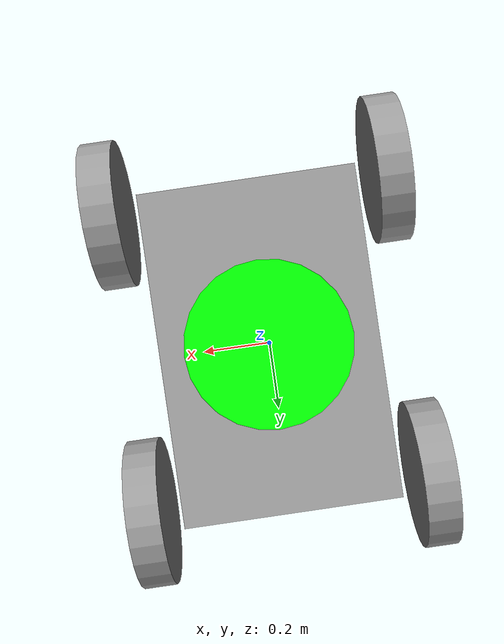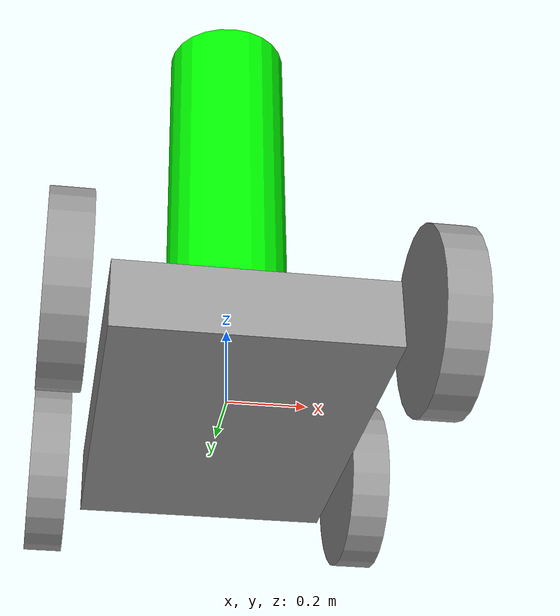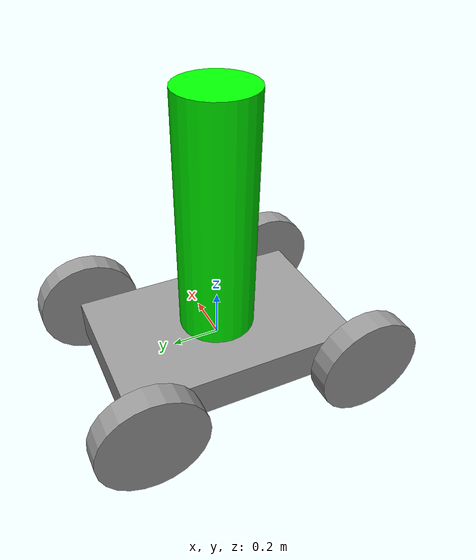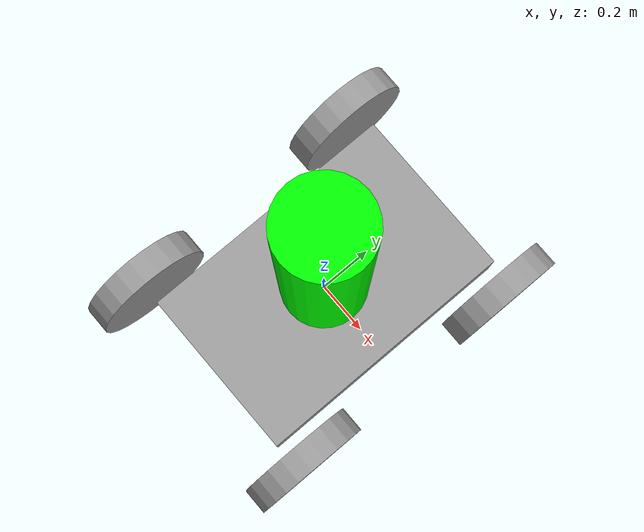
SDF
<?xml version='1.0'?>
<sdf version='1.6'>
  <model name='nemo'>
    <link name='link_1'>
      <inertial>
        <mass>5</mass>
        <inertia>
          <ixx>0.428684</ixx>
          <ixy>0</ixy>
          <ixz>0</ixz>
          <iyy>0.190336</iyy>
          <iyz>0</iyz>
          <izz>0.594986</izz>
        </inertia>
        <pose frame=''>0 0 0 0 -0 0</pose>
      </inertial>
      <pose frame=''>-0 0.00914 -0.007545 0 -0 0</pose>
      <gravity>1</gravity>
      <self_collide>0</self_collide>
      <kinematic>0</kinematic>
      <enable_wind>0</enable_wind>
      <visual name='visual'>
        <pose frame=''>0 0 0 0 -0 0</pose>
        <geometry>
          <box>
            <size>0.654191 1 0.169826</size>
          </box>
        </geometry>
        <material>
          <lighting>1</lighting>
          <script>
            <uri>file://media/materials/scripts/gazebo.material</uri>
            <name>Gazebo/Grey</name>
          </script>
          <shader type='vertex'>
            <normal_map>__default__</normal_map>
          </shader>
          <ambient>0.3 0.3 0.3 1</ambient>
          <diffuse>0.7 0.7 0.7 1</diffuse>
          <specular>0.01 0.01 0.01 1</specular>
          <emissive>0 0 0 1</emissive>
        </material>
        <transparency>0</transparency>
        <cast_shadows>1</cast_shadows>
      </visual>
      <collision name='collision'>
        <laser_retro>0</laser_retro>
        <max_contacts>10</max_contacts>
        <pose frame=''>0 0 0 0 -0 0</pose>
        <geometry>
          <box>
            <size>0.654191 1 0.169826</size>
          </box>
        </geometry>
        <surface>
          <friction>
            <ode>
              <mu>1</mu>
              <mu2>1</mu2>
              <fdir1>0 0 0</fdir1>
              <slip1>0</slip1>
              <slip2>0</slip2>
            </ode>
            <torsional>
              <coefficient>1</coefficient>
              <patch_radius>0</patch_radius>
              <surface_radius>0</surface_radius>
              <use_patch_radius>1</use_patch_radius>
              <ode>
                <slip>0</slip>
              </ode>
            </torsional>
          </friction>
          <bounce>
            <restitution_coefficient>0</restitution_coefficient>
            <threshold>1e+06</threshold>
          </bounce>
          <contact>
            <collide_without_contact>0</collide_without_contact>
            <collide_without_contact_bitmask>1</collide_without_contact_bitmask>
            <collide_bitmask>1</collide_bitmask>
            <ode>
              <soft_cfm>0</soft_cfm>
              <soft_erp>0.2</soft_erp>
              <kp>1e+13</kp>
              <kd>1</kd>
              <max_vel>0.01</max_vel>
              <min_depth>0</min_depth>
            </ode>
            <bullet>
              <split_impulse>1</split_impulse>
              <split_impulse_penetration_threshold>-0.01</split_impulse_penetration_threshold>
              <soft_cfm>0</soft_cfm>
              <soft_erp>0.2</soft_erp>
              <kp>1e+13</kp>
              <kd>1</kd>
            </bullet>
          </contact>
        </surface>
      </collision>
    </link>
    <link name='link_0'>
      <inertial>
        <mass>0.0998699</mass>
        <inertia>
          <ixx>0.00894577</ixx>
          <ixy>0</ixy>
          <ixz>0</ixz>
          <iyy>0.00894577</iyy>
          <iyz>0</iyz>
          <izz>0.00124656</izz>
        </inertia>
        <pose frame=''>0 0 0 0 -0 0</pose>
      </inertial>
      <pose frame=''>-0 -0 0.577368 0 1e-06 -1e-05</pose>
      <gravity>1</gravity>
      <self_collide>0</self_collide>
      <kinematic>0</kinematic>
      <enable_wind>0</enable_wind>
      <visual name='visual'>
        <pose frame=''>0 0 0 0 -0 0</pose>
        <geometry>
          <cylinder>
            <radius>0.157999</radius>
            <length>1</length>
          </cylinder>
        </geometry>
        <material>
          <lighting>1</lighting>
          <script>
            <uri>file://media/materials/scripts/gazebo.material</uri>
            <name>Gazebo/Grey</name>
          </script>
          <shader type='vertex'>
            <normal_map>__default__</normal_map>
          </shader>
          <ambient>0 1 0 1</ambient>
          <diffuse>0.7 0.7 0.7 1</diffuse>
          <specular>0.01 0.01 0.01 1</specular>
          <emissive>0 0 0 1</emissive>
        </material>
        <transparency>0</transparency>
        <cast_shadows>1</cast_shadows>
      </visual>
      <collision name='collision'>
        <laser_retro>0</laser_retro>
        <max_contacts>10</max_contacts>
        <pose frame=''>0 0 0 0 -0 0</pose>
        <geometry>
          <cylinder>
            <radius>0.157999</radius>
            <length>1</length>
          </cylinder>
        </geometry>
        <surface>
          <friction>
            <ode>
              <mu>1</mu>
              <mu2>1</mu2>
              <fdir1>0 0 0</fdir1>
              <slip1>0</slip1>
              <slip2>0</slip2>
            </ode>
            <torsional>
              <coefficient>1</coefficient>
              <patch_radius>0</patch_radius>
              <surface_radius>0</surface_radius>
              <use_patch_radius>1</use_patch_radius>
              <ode>
                <slip>0</slip>
              </ode>
            </torsional>
          </friction>
          <bounce>
            <restitution_coefficient>0</restitution_coefficient>
            <threshold>1e+06</threshold>
          </bounce>
          <contact>
            <collide_without_contact>0</collide_without_contact>
            <collide_without_contact_bitmask>1</collide_without_contact_bitmask>
            <collide_bitmask>1</collide_bitmask>
            <ode>
              <soft_cfm>0</soft_cfm>
              <soft_erp>0.2</soft_erp>
              <kp>1e+13</kp>
              <kd>1</kd>
              <max_vel>0.01</max_vel>
              <min_depth>0</min_depth>
            </ode>
            <bullet>
              <split_impulse>1</split_impulse>
              <split_impulse_penetration_threshold>-0.01</split_impulse_penetration_threshold>
              <soft_cfm>0</soft_cfm>
              <soft_erp>0.2</soft_erp>
              <kp>1e+13</kp>
              <kd>1</kd>
            </bullet>
          </contact>
        </surface>
      </collision>
    </link>
    <link name='link_2'>
      <inertial>
        <mass>1</mass>
        <inertia>
          <ixx>0.0131563</ixx>
          <ixy>0</ixy>
          <ixz>0</ixz>
          <iyy>0.0131563</iyy>
          <iyz>0</iyz>
          <izz>0.0247202</izz>
        </inertia>
        <pose frame=''>0 0 0 0 -0 0</pose>
      </inertial>
      <pose frame=''>0.422661 -0.451098 0.001886 -3.14159 -1.57079 -3e-06</pose>
      <gravity>1</gravity>
      <self_collide>0</self_collide>
      <kinematic>0</kinematic>
      <enable_wind>0</enable_wind>
      <visual name='visual'>
        <pose frame=''>0 0 0 0 -0 0</pose>
        <geometry>
          <cylinder>
            <radius>0.222352</radius>
            <length>0.0977479</length>
          </cylinder>
        </geometry>
        <material>
          <lighting>1</lighting>
          <script>
            <uri>file://media/materials/scripts/gazebo.material</uri>
            <name>Gazebo/Grey</name>
          </script>
          <shader type='vertex'>
            <normal_map>__default__</normal_map>
          </shader>
          <ambient>0.3 0.3 0.3 1</ambient>
          <diffuse>0.7 0.7 0.7 1</diffuse>
          <specular>0.01 0.01 0.01 1</specular>
          <emissive>0 0 0 1</emissive>
        </material>
        <transparency>0</transparency>
        <cast_shadows>1</cast_shadows>
      </visual>
      <collision name='collision'>
        <laser_retro>0</laser_retro>
        <max_contacts>10</max_contacts>
        <pose frame=''>0 0 0 0 -0 0</pose>
        <geometry>
          <cylinder>
            <radius>0.222352</radius>
            <length>0.097748</length>
          </cylinder>
        </geometry>
        <surface>
          <friction>
            <ode>
              <mu>1</mu>
              <mu2>1</mu2>
              <fdir1>0 0 0</fdir1>
              <slip1>0</slip1>
              <slip2>0</slip2>
            </ode>
            <torsional>
              <coefficient>1</coefficient>
              <patch_radius>0</patch_radius>
              <surface_radius>0</surface_radius>
              <use_patch_radius>1</use_patch_radius>
              <ode>
                <slip>0</slip>
              </ode>
            </torsional>
          </friction>
          <bounce>
            <restitution_coefficient>0</restitution_coefficient>
            <threshold>1e+06</threshold>
          </bounce>
          <contact>
            <collide_without_contact>0</collide_without_contact>
            <collide_without_contact_bitmask>1</collide_without_contact_bitmask>
            <collide_bitmask>1</collide_bitmask>
            <ode>
              <soft_cfm>0</soft_cfm>
              <soft_erp>0.2</soft_erp>
              <kp>1e+13</kp>
              <kd>1</kd>
              <max_vel>0.01</max_vel>
              <min_depth>0</min_depth>
            </ode>
            <bullet>
              <split_impulse>1</split_impulse>
              <split_impulse_penetration_threshold>-0.01</split_impulse_penetration_threshold>
              <soft_cfm>0</soft_cfm>
              <soft_erp>0.2</soft_erp>
              <kp>1e+13</kp>
              <kd>1</kd>
            </bullet>
          </contact>
        </surface>
      </collision>
    </link>
    <link name='link_2_clone'>
      <inertial>
        <mass>1</mass>
        <inertia>
          <ixx>0.0131563</ixx>
          <ixy>0</ixy>
          <ixz>0</ixz>
          <iyy>0.0131563</iyy>
          <iyz>0</iyz>
          <izz>0.0247202</izz>
        </inertia>
        <pose frame=''>0 0 0 0 -0 0</pose>
      </inertial>
      <pose frame=''>-0.422661 0.457533 0.001886 -3.14159 -1.57079 -3e-06</pose>
      <gravity>1</gravity>
      <self_collide>0</self_collide>
      <kinematic>0</kinematic>
      <enable_wind>0</enable_wind>
      <visual name='visual'>
        <pose frame=''>0 0 0 0 -0 0</pose>
        <geometry>
          <cylinder>
            <radius>0.222352</radius>
            <length>0.0977479</length>
          </cylinder>
        </geometry>
        <material>
          <lighting>1</lighting>
          <script>
            <uri>file://media/materials/scripts/gazebo.material</uri>
            <name>Gazebo/Grey</name>
          </script>
          <shader type='vertex'>
            <normal_map>__default__</normal_map>
          </shader>
          <ambient>0.3 0.3 0.3 1</ambient>
          <diffuse>0.7 0.7 0.7 1</diffuse>
          <specular>0.01 0.01 0.01 1</specular>
          <emissive>0 0 0 1</emissive>
        </material>
        <transparency>0</transparency>
        <cast_shadows>1</cast_shadows>
      </visual>
      <collision name='collision'>
        <laser_retro>0</laser_retro>
        <max_contacts>10</max_contacts>
        <pose frame=''>0 0 0 0 -0 0</pose>
        <geometry>
          <cylinder>
            <radius>0.222352</radius>
            <length>0.097748</length>
          </cylinder>
        </geometry>
        <surface>
          <friction>
            <ode>
              <mu>1</mu>
              <mu2>1</mu2>
              <fdir1>0 0 0</fdir1>
              <slip1>0</slip1>
              <slip2>0</slip2>
            </ode>
            <torsional>
              <coefficient>1</coefficient>
              <patch_radius>0</patch_radius>
              <surface_radius>0</surface_radius>
              <use_patch_radius>1</use_patch_radius>
              <ode>
                <slip>0</slip>
              </ode>
            </torsional>
          </friction>
          <bounce>
            <restitution_coefficient>0</restitution_coefficient>
            <threshold>1e+06</threshold>
          </bounce>
          <contact>
            <collide_without_contact>0</collide_without_contact>
            <collide_without_contact_bitmask>1</collide_without_contact_bitmask>
            <collide_bitmask>1</collide_bitmask>
            <ode>
              <soft_cfm>0</soft_cfm>
              <soft_erp>0.2</soft_erp>
              <kp>1e+13</kp>
              <kd>1</kd>
              <max_vel>0.01</max_vel>
              <min_depth>0</min_depth>
            </ode>
            <bullet>
              <split_impulse>1</split_impulse>
              <split_impulse_penetration_threshold>-0.01</split_impulse_penetration_threshold>
              <soft_cfm>0</soft_cfm>
              <soft_erp>0.2</soft_erp>
              <kp>1e+13</kp>
              <kd>1</kd>
            </bullet>
          </contact>
        </surface>
      </collision>
    </link>
    <link name='link_2_clone_0'>
      <inertial>
        <mass>1</mass>
        <inertia>
          <ixx>0.0131563</ixx>
          <ixy>0</ixy>
          <ixz>0</ixz>
          <iyy>0.0131563</iyy>
          <iyz>0</iyz>
          <izz>0.0247202</izz>
        </inertia>
        <pose frame=''>0 0 0 0 -0 0</pose>
      </inertial>
      <pose frame=''>-0.422661 -0.473107 0.001886 -3.14159 -1.57079 -3e-06</pose>
      <gravity>1</gravity>
      <self_collide>0</self_collide>
      <kinematic>0</kinematic>
      <enable_wind>0</enable_wind>
      <visual name='visual'>
        <pose frame=''>0 0 0 0 -0 0</pose>
        <geometry>
          <cylinder>
            <radius>0.222352</radius>
            <length>0.0977479</length>
          </cylinder>
        </geometry>
        <material>
          <lighting>1</lighting>
          <script>
            <uri>file://media/materials/scripts/gazebo.material</uri>
            <name>Gazebo/Grey</name>
          </script>
          <shader type='vertex'>
            <normal_map>__default__</normal_map>
          </shader>
          <ambient>0.3 0.3 0.3 1</ambient>
          <diffuse>0.7 0.7 0.7 1</diffuse>
          <specular>0.01 0.01 0.01 1</specular>
          <emissive>0 0 0 1</emissive>
        </material>
        <transparency>0</transparency>
        <cast_shadows>1</cast_shadows>
      </visual>
      <collision name='collision'>
        <laser_retro>0</laser_retro>
        <max_contacts>10</max_contacts>
        <pose frame=''>0 0 0 0 -0 0</pose>
        <geometry>
          <cylinder>
            <radius>0.222352</radius>
            <length>0.097748</length>
          </cylinder>
        </geometry>
        <surface>
          <friction>
            <ode>
              <mu>1</mu>
              <mu2>1</mu2>
              <fdir1>0 0 0</fdir1>
              <slip1>0</slip1>
              <slip2>0</slip2>
            </ode>
            <torsional>
              <coefficient>1</coefficient>
              <patch_radius>0</patch_radius>
              <surface_radius>0</surface_radius>
              <use_patch_radius>1</use_patch_radius>
              <ode>
                <slip>0</slip>
              </ode>
            </torsional>
          </friction>
          <bounce>
            <restitution_coefficient>0</restitution_coefficient>
            <threshold>1e+06</threshold>
          </bounce>
          <contact>
            <collide_without_contact>0</collide_without_contact>
            <collide_without_contact_bitmask>1</collide_without_contact_bitmask>
            <collide_bitmask>1</collide_bitmask>
            <ode>
              <soft_cfm>0</soft_cfm>
              <soft_erp>0.2</soft_erp>
              <kp>1e+13</kp>
              <kd>1</kd>
              <max_vel>0.01</max_vel>
              <min_depth>0</min_depth>
            </ode>
            <bullet>
              <split_impulse>1</split_impulse>
              <split_impulse_penetration_threshold>-0.01</split_impulse_penetration_threshold>
              <soft_cfm>0</soft_cfm>
              <soft_erp>0.2</soft_erp>
              <kp>1e+13</kp>
              <kd>1</kd>
            </bullet>
          </contact>
        </surface>
      </collision>
    </link>
    <link name='link_2_clone_clone'>
      <inertial>
        <mass>1</mass>
        <inertia>
          <ixx>0.0131563</ixx>
          <ixy>0</ixy>
          <ixz>0</ixz>
          <iyy>0.0131563</iyy>
          <iyz>0</iyz>
          <izz>0.0247202</izz>
        </inertia>
        <pose frame=''>0 0 0 0 -0 0</pose>
      </inertial>
      <pose frame=''>0.422661 0.457533 0.001886 -3.14159 -1.57079 -3e-06</pose>
      <gravity>1</gravity>
      <self_collide>0</self_collide>
      <kinematic>0</kinematic>
      <enable_wind>0</enable_wind>
      <visual name='visual'>
        <pose frame=''>0 0 0 0 -0 0</pose>
        <geometry>
          <cylinder>
            <radius>0.222352</radius>
            <length>0.0977479</length>
          </cylinder>
        </geometry>
        <material>
          <lighting>1</lighting>
          <script>
            <uri>file://media/materials/scripts/gazebo.material</uri>
            <name>Gazebo/Grey</name>
          </script>
          <shader type='vertex'>
            <normal_map>__default__</normal_map>
          </shader>
          <ambient>0.3 0.3 0.3 1</ambient>
          <diffuse>0.7 0.7 0.7 1</diffuse>
          <specular>0.01 0.01 0.01 1</specular>
          <emissive>0 0 0 1</emissive>
        </material>
        <transparency>0</transparency>
        <cast_shadows>1</cast_shadows>
      </visual>
      <collision name='collision'>
        <laser_retro>0</laser_retro>
        <max_contacts>10</max_contacts>
        <pose frame=''>0 0 0 0 -0 0</pose>
        <geometry>
          <cylinder>
            <radius>0.222352</radius>
            <length>0.097748</length>
          </cylinder>
        </geometry>
        <surface>
          <friction>
            <ode>
              <mu>1</mu>
              <mu2>1</mu2>
              <fdir1>0 0 0</fdir1>
              <slip1>0</slip1>
              <slip2>0</slip2>
            </ode>
            <torsional>
              <coefficient>1</coefficient>
              <patch_radius>0</patch_radius>
              <surface_radius>0</surface_radius>
              <use_patch_radius>1</use_patch_radius>
              <ode>
                <slip>0</slip>
              </ode>
            </torsional>
          </friction>
          <bounce>
            <restitution_coefficient>0</restitution_coefficient>
            <threshold>1e+06</threshold>
          </bounce>
          <contact>
            <collide_without_contact>0</collide_without_contact>
            <collide_without_contact_bitmask>1</collide_without_contact_bitmask>
            <collide_bitmask>1</collide_bitmask>
            <ode>
              <soft_cfm>0</soft_cfm>
              <soft_erp>0.2</soft_erp>
              <kp>1e+13</kp>
              <kd>1</kd>
              <max_vel>0.01</max_vel>
              <min_depth>0</min_depth>
            </ode>
            <bullet>
              <split_impulse>1</split_impulse>
              <split_impulse_penetration_threshold>-0.01</split_impulse_penetration_threshold>
              <soft_cfm>0</soft_cfm>
              <soft_erp>0.2</soft_erp>
              <kp>1e+13</kp>
              <kd>1</kd>
            </bullet>
          </contact>
        </surface>
      </collision>
    </link>
    <joint name='link_0_JOINT_0' type='fixed'>
      <parent>link_0</parent>
      <child>link_1</child>
      <pose frame=''>0 0 0 0 -0 0</pose>
      <physics>
        <ode>
          <limit>
            <cfm>0</cfm>
            <erp>0.2</erp>
          </limit>
          <suspension>
            <cfm>0</cfm>
            <erp>0.2</erp>
          </suspension>
        </ode>
      </physics>
    </joint>
    <joint name='link_1_JOINT_0' type='revolute'>
      <parent>link_1</parent>
      <child>link_2_clone_clone</child>
      <pose frame=''>0 0 0 0 -0 0</pose>
      <axis>
        <xyz>0 0 1</xyz>
        <use_parent_model_frame>0</use_parent_model_frame>
        <limit>
          <lower>-1.79769e+308</lower>
          <upper>1.79769e+308</upper>
          <effort>-1</effort>
          <velocity>-1</velocity>
        </limit>
        <dynamics>
          <spring_reference>0</spring_reference>
          <spring_stiffness>0</spring_stiffness>
          <damping>0</damping>
          <friction>0</friction>
        </dynamics>
      </axis>
      <physics>
        <ode>
          <limit>
            <cfm>0</cfm>
            <erp>0.2</erp>
          </limit>
          <suspension>
            <cfm>0</cfm>
            <erp>0.2</erp>
          </suspension>
        </ode>
      </physics>
    </joint>
    <joint name='link_1_JOINT_1' type='revolute'>
      <parent>link_1</parent>
      <child>link_2</child>
      <pose frame=''>0 0 0 0 -0 0</pose>
      <axis>
        <xyz>0 0 1</xyz>
        <use_parent_model_frame>0</use_parent_model_frame>
        <limit>
          <lower>-1.79769e+308</lower>
          <upper>1.79769e+308</upper>
          <effort>-1</effort>
          <velocity>-1</velocity>
        </limit>
        <dynamics>
          <spring_reference>0</spring_reference>
          <spring_stiffness>0</spring_stiffness>
          <damping>0</damping>
          <friction>0</friction>
        </dynamics>
      </axis>
      <physics>
        <ode>
          <limit>
            <cfm>0</cfm>
            <erp>0.2</erp>
          </limit>
          <suspension>
            <cfm>0</cfm>
            <erp>0.2</erp>
          </suspension>
        </ode>
      </physics>
    </joint>
    <joint name='link_1_JOINT_2' type='revolute'>
      <parent>link_1</parent>
      <child>link_2_clone</child>
      <pose frame=''>0 0 0 0 -0 0</pose>
      <axis>
        <xyz>0 0 1</xyz>
        <use_parent_model_frame>0</use_parent_model_frame>
        <limit>
          <lower>-1.79769e+308</lower>
          <upper>1.79769e+308</upper>
          <effort>-1</effort>
          <velocity>-1</velocity>
        </limit>
        <dynamics>
          <spring_reference>0</spring_reference>
          <spring_stiffness>0</spring_stiffness>
          <damping>0</damping>
          <friction>0</friction>
        </dynamics>
      </axis>
      <physics>
        <ode>
          <limit>
            <cfm>0</cfm>
            <erp>0.2</erp>
          </limit>
          <suspension>
            <cfm>0</cfm>
            <erp>0.2</erp>
          </suspension>
        </ode>
      </physics>
    </joint>
    <joint name='link_1_JOINT_3' type='revolute'>
      <parent>link_1</parent>
      <child>link_2_clone_0</child>
      <pose frame=''>0 0 0 0 -0 0</pose>
      <axis>
        <xyz>0 0 1</xyz>
        <use_parent_model_frame>0</use_parent_model_frame>
        <limit>
          <lower>-1.79769e+308</lower>
          <upper>1.79769e+308</upper>
          <effort>-1</effort>
          <velocity>-1</velocity>
        </limit>
        <dynamics>
          <spring_reference>0</spring_reference>
          <spring_stiffness>0</spring_stiffness>
          <damping>0</damping>
          <friction>0</friction>
        </dynamics>
      </axis>
      <physics>
        <ode>
          <limit>
            <cfm>0</cfm>
            <erp>0.2</erp>
          </limit>
          <suspension>
            <cfm>0</cfm>
            <erp>0.2</erp>
          </suspension>
        </ode>
      </physics>
    </joint>
    <static>0</static>
    <allow_auto_disable>1</allow_auto_disable>
    <plugin name='object_controller' filename='libgazebo_ros_planar_move.so'>
      <commandTopic>vel_nemo</commandTopic>
      <odometryTopic>odom_nemo</odometryTopic>
      <odometryFrame>odom_nemo</odometryFrame>
      <odometryRate>20.0</odometryRate>
      <robotBaseFrame></robotBaseFrame>
    </plugin>
  </model>
</sdf>
